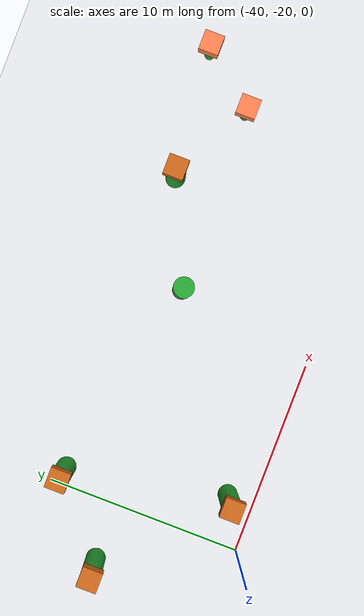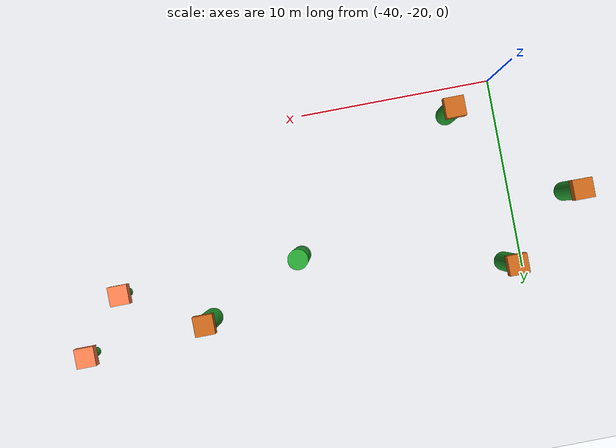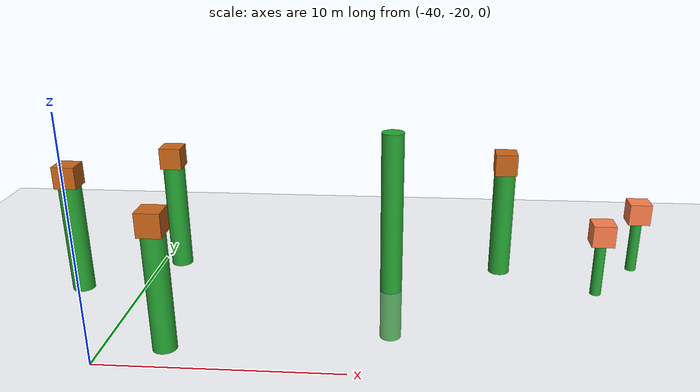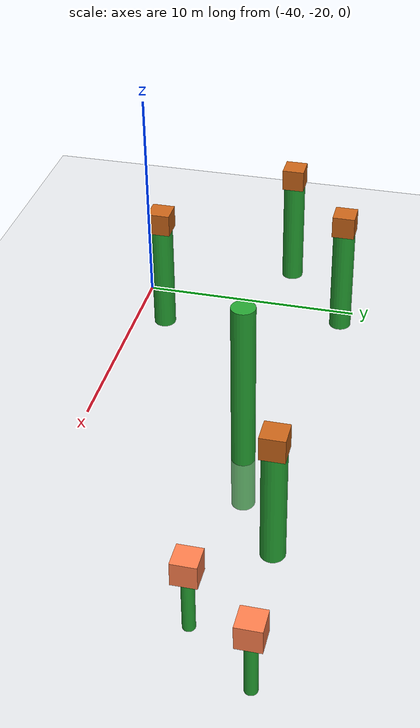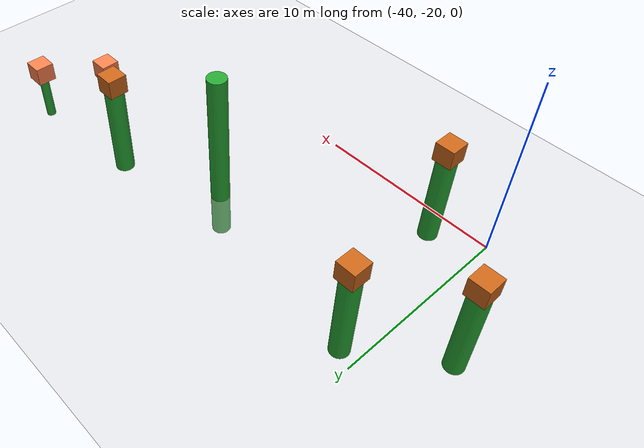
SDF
<sdf version="1.7">
 <world name="default">
  <model name="ground_plane">
   <static>1</static>
   <link name="link">
    <collision name="collision">
     <geometry><plane><normal>0 0 1</normal><size>100 100</size></plane></geometry>
     <surface>
      <contact><collide_bitmask>65535</collide_bitmask></contact>
      <friction><ode><mu>100</mu><mu2>50</mu2></ode></friction>
     </surface>
    </collision>
    <visual name="visual">
     <cast_shadows>0</cast_shadows>
     <geometry><plane><normal>0 0 1</normal><size>100 100</size></plane></geometry>
     <material>
      <script><uri>file://media/materials/scripts/gazebo.material</uri><name>Gazebo/Grey</name></script>
     </material>
    </visual>
   </link>
  </model>
  <model name="unit_cylinder_green_2_clone_clone_13">
   <link name="link">
    <inertial>
     <mass>1</mass>
     <inertia><ixx>0.145833</ixx><ixy>0</ixy><ixz>0</ixz><iyy>0.145833</iyy><iyz>0</iyz><izz>0.125</izz></inertia>
    </inertial>
    <visual name="visual">
     <geometry><cylinder><radius>0.5</radius><length>10</length></cylinder></geometry>
     <material>
      <script><name>Gazebo/Green</name><uri>file://media/materials/scripts/gazebo.material</uri></script>
      <shader type="pixel"><normal_map>__default__</normal_map></shader>
      <ambient>0 1 0.3 1</ambient>
      <diffuse>0.7 0.7 0.7 1</diffuse>
      <specular>0.01 0.01 0.01 1</specular>
      <emissive>0 0 0 1</emissive>
     </material>
    </visual>
    <collision name="collision">
     <geometry><cylinder><radius>0.5</radius><length>5</length></cylinder></geometry>
     <surface>
      <friction>
       <ode><mu>1</mu><mu2>1</mu2><fdir1>0 0 0</fdir1><slip1>0</slip1><slip2>0</slip2></ode>
       <torsional>
        <coefficient>1</coefficient>
        <patch_radius>0</patch_radius>
        <surface_radius>0</surface_radius>
        <use_patch_radius>1</use_patch_radius>
        <ode><slip>0</slip></ode>
       </torsional>
      </friction>
      <bounce><restitution_coefficient>0</restitution_coefficient><threshold>1e+06</threshold></bounce>
      <contact>
       <collide_without_contact>0</collide_without_contact>
       <collide_without_contact_bitmask>1</collide_without_contact_bitmask>
       <collide_bitmask>1</collide_bitmask>
       <ode>
        <soft_cfm>0</soft_cfm>
        <soft_erp>0.2</soft_erp>
        <kp>1e+13</kp>
        <kd>1</kd>
        <max_vel>0.01</max_vel>
        <min_depth>0</min_depth>
       </ode>
       <bullet>
        <split_impulse>1</split_impulse>
        <split_impulse_penetration_threshold>-0.01</split_impulse_penetration_threshold>
        <soft_cfm>0</soft_cfm>
        <soft_erp>0.2</soft_erp>
        <kp>1e+13</kp>
        <kd>1</kd>
       </bullet>
      </contact>
     </surface>
    </collision>
   </link>
   <static>1</static>
   <pose>-28.5894 -12.7369 2.5 0 0 -0.000967</pose>
  </model>
  <model name="unit_cylinder_green_2_clone_clone_3_clone_0_clone_0_clone_22">
   <link name="link">
    <inertial>
     <mass>1</mass>
     <inertia><ixx>0.145833</ixx><ixy>0</ixy><ixz>0</ixz><iyy>0.145833</iyy><iyz>0</iyz><izz>0.125</izz></inertia>
    </inertial>
    <visual name="visual">
     <geometry><cylinder><radius>0.5</radius><length>5</length></cylinder></geometry>
     <material>
      <script><name>Gazebo/Green</name><uri>file://media/materials/scripts/gazebo.material</uri></script>
      <shader type="pixel"><normal_map>__default__</normal_map></shader>
      <ambient>0 1 0.3 1</ambient>
      <diffuse>0.7 0.7 0.7 1</diffuse>
      <specular>0.01 0.01 0.01 1</specular>
      <emissive>0 0 0 1</emissive>
     </material>
    </visual>
    <collision name="collision">
     <geometry><cylinder><radius>0.5</radius><length>5</length></cylinder></geometry>
     <surface>
      <friction>
       <ode><mu>1</mu><mu2>1</mu2><fdir1>0 0 0</fdir1><slip1>0</slip1><slip2>0</slip2></ode>
       <torsional>
        <coefficient>1</coefficient>
        <patch_radius>0</patch_radius>
        <surface_radius>0</surface_radius>
        <use_patch_radius>1</use_patch_radius>
        <ode><slip>0</slip></ode>
       </torsional>
      </friction>
      <bounce><restitution_coefficient>0</restitution_coefficient><threshold>1e+06</threshold></bounce>
      <contact>
       <collide_without_contact>0</collide_without_contact>
       <collide_without_contact_bitmask>1</collide_without_contact_bitmask>
       <collide_bitmask>1</collide_bitmask>
       <ode>
        <soft_cfm>0</soft_cfm>
        <soft_erp>0.2</soft_erp>
        <kp>1e+13</kp>
        <kd>1</kd>
        <max_vel>0.01</max_vel>
        <min_depth>0</min_depth>
       </ode>
       <bullet>
        <split_impulse>1</split_impulse>
        <split_impulse_penetration_threshold>-0.01</split_impulse_penetration_threshold>
        <soft_cfm>0</soft_cfm>
        <soft_erp>0.2</soft_erp>
        <kp>1e+13</kp>
        <kd>1</kd>
       </bullet>
      </contact>
     </surface>
    </collision>
   </link>
   <link name="link_3">
    <inertial>
     <mass>1</mass>
     <inertia>
      <ixx>0.166667</ixx>
      <ixy>0</ixy>
      <ixz>0</ixz>
      <iyy>0.166667</iyy>
      <iyz>0</iyz>
      <izz>0.166667</izz>
     </inertia>
    </inertial>
    <pose>0 0 3 0 -0 0.000935</pose>
    <visual name="visual">
     <geometry><box><size>1 1 1</size></box></geometry>
     <material>
      <lighting>1</lighting>
      <script><uri>file://media/materials/scripts/gazebo.material</uri><name>Gazebo/Grey</name></script>
      <shader type="pixel"><normal_map>__default__</normal_map></shader>
      <ambient>0.8 0.4 0.1 1</ambient>
      <diffuse>0.7 0.7 0.7 1</diffuse>
      <specular>0.01 0.01 0.01 1</specular>
      <emissive>0 0 0 1</emissive>
     </material>
    </visual>
    <collision name="collision">
     <geometry><box><size>1 1 1</size></box></geometry>
     <surface>
      <friction>
       <ode><mu>1</mu><mu2>1</mu2><fdir1>0 0 0</fdir1><slip1>0</slip1><slip2>0</slip2></ode>
       <torsional>
        <coefficient>1</coefficient>
        <patch_radius>0</patch_radius>
        <surface_radius>0</surface_radius>
        <use_patch_radius>1</use_patch_radius>
        <ode><slip>0</slip></ode>
       </torsional>
      </friction>
      <bounce><restitution_coefficient>0</restitution_coefficient><threshold>1e+06</threshold></bounce>
      <contact>
       <collide_without_contact>0</collide_without_contact>
       <collide_without_contact_bitmask>1</collide_without_contact_bitmask>
       <collide_bitmask>1</collide_bitmask>
       <ode>
        <soft_cfm>0</soft_cfm>
        <soft_erp>0.2</soft_erp>
        <kp>1e+13</kp>
        <kd>1</kd>
        <max_vel>0.01</max_vel>
        <min_depth>0</min_depth>
       </ode>
       <bullet>
        <split_impulse>1</split_impulse>
        <split_impulse_penetration_threshold>-0.01</split_impulse_penetration_threshold>
        <soft_cfm>0</soft_cfm>
        <soft_erp>0.2</soft_erp>
        <kp>1e+13</kp>
        <kd>1</kd>
       </bullet>
      </contact>
     </surface>
    </collision>
   </link>
   <static>1</static>
   <pose>-23.4369 -10.3965 2.49999 0 0 -0.000935</pose>
  </model>
  <model name="unit_cylinder_green_2_clone_clone_3_clone_0_clone_0_clone_23">
   <link name="link">
    <inertial>
     <mass>1</mass>
     <inertia><ixx>0.145833</ixx><ixy>0</ixy><ixz>0</ixz><iyy>0.145833</iyy><iyz>0</iyz><izz>0.125</izz></inertia>
    </inertial>
    <visual name="visual">
     <geometry><cylinder><radius>0.5</radius><length>5</length></cylinder></geometry>
     <material>
      <script><name>Gazebo/Green</name><uri>file://media/materials/scripts/gazebo.material</uri></script>
      <shader type="pixel"><normal_map>__default__</normal_map></shader>
      <ambient>0 1 0.3 1</ambient>
      <diffuse>0.7 0.7 0.7 1</diffuse>
      <specular>0.01 0.01 0.01 1</specular>
      <emissive>0 0 0 1</emissive>
     </material>
    </visual>
    <collision name="collision">
     <geometry><cylinder><radius>0.5</radius><length>5</length></cylinder></geometry>
     <surface>
      <friction>
       <ode><mu>1</mu><mu2>1</mu2><fdir1>0 0 0</fdir1><slip1>0</slip1><slip2>0</slip2></ode>
       <torsional>
        <coefficient>1</coefficient>
        <patch_radius>0</patch_radius>
        <surface_radius>0</surface_radius>
        <use_patch_radius>1</use_patch_radius>
        <ode><slip>0</slip></ode>
       </torsional>
      </friction>
      <bounce><restitution_coefficient>0</restitution_coefficient><threshold>1e+06</threshold></bounce>
      <contact>
       <collide_without_contact>0</collide_without_contact>
       <collide_without_contact_bitmask>1</collide_without_contact_bitmask>
       <collide_bitmask>1</collide_bitmask>
       <ode>
        <soft_cfm>0</soft_cfm>
        <soft_erp>0.2</soft_erp>
        <kp>1e+13</kp>
        <kd>1</kd>
        <max_vel>0.01</max_vel>
        <min_depth>0</min_depth>
       </ode>
       <bullet>
        <split_impulse>1</split_impulse>
        <split_impulse_penetration_threshold>-0.01</split_impulse_penetration_threshold>
        <soft_cfm>0</soft_cfm>
        <soft_erp>0.2</soft_erp>
        <kp>1e+13</kp>
        <kd>1</kd>
       </bullet>
      </contact>
     </surface>
    </collision>
   </link>
   <link name="link_3">
    <inertial>
     <mass>1</mass>
     <inertia>
      <ixx>0.166667</ixx>
      <ixy>0</ixy>
      <ixz>0</ixz>
      <iyy>0.166667</iyy>
      <iyz>0</iyz>
      <izz>0.166667</izz>
     </inertia>
    </inertial>
    <pose>0 0 3 0 -0 0.000935</pose>
    <visual name="visual">
     <geometry><box><size>1 1 1</size></box></geometry>
     <material>
      <lighting>1</lighting>
      <script><uri>file://media/materials/scripts/gazebo.material</uri><name>Gazebo/Grey</name></script>
      <shader type="pixel"><normal_map>__default__</normal_map></shader>
      <ambient>0.8 0.4 0.1 1</ambient>
      <diffuse>0.7 0.7 0.7 1</diffuse>
      <specular>0.01 0.01 0.01 1</specular>
      <emissive>0 0 0 1</emissive>
     </material>
    </visual>
    <collision name="collision">
     <geometry><box><size>1 1 1</size></box></geometry>
     <surface>
      <friction>
       <ode><mu>1</mu><mu2>1</mu2><fdir1>0 0 0</fdir1><slip1>0</slip1><slip2>0</slip2></ode>
       <torsional>
        <coefficient>1</coefficient>
        <patch_radius>0</patch_radius>
        <surface_radius>0</surface_radius>
        <use_patch_radius>1</use_patch_radius>
        <ode><slip>0</slip></ode>
       </torsional>
      </friction>
      <bounce><restitution_coefficient>0</restitution_coefficient><threshold>1e+06</threshold></bounce>
      <contact>
       <collide_without_contact>0</collide_without_contact>
       <collide_without_contact_bitmask>1</collide_without_contact_bitmask>
       <collide_bitmask>1</collide_bitmask>
       <ode>
        <soft_cfm>0</soft_cfm>
        <soft_erp>0.2</soft_erp>
        <kp>1e+13</kp>
        <kd>1</kd>
        <max_vel>0.01</max_vel>
        <min_depth>0</min_depth>
       </ode>
       <bullet>
        <split_impulse>1</split_impulse>
        <split_impulse_penetration_threshold>-0.01</split_impulse_penetration_threshold>
        <soft_cfm>0</soft_cfm>
        <soft_erp>0.2</soft_erp>
        <kp>1e+13</kp>
        <kd>1</kd>
       </bullet>
      </contact>
     </surface>
    </collision>
   </link>
   <static>1</static>
   <pose>-37.4722 -18.6001 2.49999 0 0 -0.000935</pose>
  </model>
  <model name="unit_cylinder_green_2_clone_clone_3_clone_0_clone_0_clone_24">
   <link name="link">
    <inertial>
     <mass>1</mass>
     <inertia><ixx>0.145833</ixx><ixy>0</ixy><ixz>0</ixz><iyy>0.145833</iyy><iyz>0</iyz><izz>0.125</izz></inertia>
    </inertial>
    <visual name="visual">
     <geometry><cylinder><radius>0.5</radius><length>5</length></cylinder></geometry>
     <material>
      <script><name>Gazebo/Green</name><uri>file://media/materials/scripts/gazebo.material</uri></script>
      <shader type="pixel"><normal_map>__default__</normal_map></shader>
      <ambient>0 1 0.3 1</ambient>
      <diffuse>0.7 0.7 0.7 1</diffuse>
      <specular>0.01 0.01 0.01 1</specular>
      <emissive>0 0 0 1</emissive>
     </material>
    </visual>
    <collision name="collision">
     <geometry><cylinder><radius>0.5</radius><length>5</length></cylinder></geometry>
     <surface>
      <friction>
       <ode><mu>1</mu><mu2>1</mu2><fdir1>0 0 0</fdir1><slip1>0</slip1><slip2>0</slip2></ode>
       <torsional>
        <coefficient>1</coefficient>
        <patch_radius>0</patch_radius>
        <surface_radius>0</surface_radius>
        <use_patch_radius>1</use_patch_radius>
        <ode><slip>0</slip></ode>
       </torsional>
      </friction>
      <bounce><restitution_coefficient>0</restitution_coefficient><threshold>1e+06</threshold></bounce>
      <contact>
       <collide_without_contact>0</collide_without_contact>
       <collide_without_contact_bitmask>1</collide_without_contact_bitmask>
       <collide_bitmask>1</collide_bitmask>
       <ode>
        <soft_cfm>0</soft_cfm>
        <soft_erp>0.2</soft_erp>
        <kp>1e+13</kp>
        <kd>1</kd>
        <max_vel>0.01</max_vel>
        <min_depth>0</min_depth>
       </ode>
       <bullet>
        <split_impulse>1</split_impulse>
        <split_impulse_penetration_threshold>-0.01</split_impulse_penetration_threshold>
        <soft_cfm>0</soft_cfm>
        <soft_erp>0.2</soft_erp>
        <kp>1e+13</kp>
        <kd>1</kd>
       </bullet>
      </contact>
     </surface>
    </collision>
   </link>
   <link name="link_3">
    <inertial>
     <mass>1</mass>
     <inertia>
      <ixx>0.166667</ixx>
      <ixy>0</ixy>
      <ixz>0</ixz>
      <iyy>0.166667</iyy>
      <iyz>0</iyz>
      <izz>0.166667</izz>
     </inertia>
    </inertial>
    <pose>0 0 3 0 -0 0.000935</pose>
    <visual name="visual">
     <geometry><box><size>1 1 1</size></box></geometry>
     <material>
      <lighting>1</lighting>
      <script><uri>file://media/materials/scripts/gazebo.material</uri><name>Gazebo/Grey</name></script>
      <shader type="pixel"><normal_map>__default__</normal_map></shader>
      <ambient>0.8 0.4 0.1 1</ambient>
      <diffuse>0.7 0.7 0.7 1</diffuse>
      <specular>0.01 0.01 0.01 1</specular>
      <emissive>0 0 0 1</emissive>
     </material>
    </visual>
    <collision name="collision">
     <geometry><box><size>1 1 1</size></box></geometry>
     <surface>
      <friction>
       <ode><mu>1</mu><mu2>1</mu2><fdir1>0 0 0</fdir1><slip1>0</slip1><slip2>0</slip2></ode>
       <torsional>
        <coefficient>1</coefficient>
        <patch_radius>0</patch_radius>
        <surface_radius>0</surface_radius>
        <use_patch_radius>1</use_patch_radius>
        <ode><slip>0</slip></ode>
       </torsional>
      </friction>
      <bounce><restitution_coefficient>0</restitution_coefficient><threshold>1e+06</threshold></bounce>
      <contact>
       <collide_without_contact>0</collide_without_contact>
       <collide_without_contact_bitmask>1</collide_without_contact_bitmask>
       <collide_bitmask>1</collide_bitmask>
       <ode>
        <soft_cfm>0</soft_cfm>
        <soft_erp>0.2</soft_erp>
        <kp>1e+13</kp>
        <kd>1</kd>
        <max_vel>0.01</max_vel>
        <min_depth>0</min_depth>
       </ode>
       <bullet>
        <split_impulse>1</split_impulse>
        <split_impulse_penetration_threshold>-0.01</split_impulse_penetration_threshold>
        <soft_cfm>0</soft_cfm>
        <soft_erp>0.2</soft_erp>
        <kp>1e+13</kp>
        <kd>1</kd>
       </bullet>
      </contact>
     </surface>
    </collision>
   </link>
   <static>1</static>
   <pose>-39.0761 -10.4629 2.49999 0 0 -0.000935</pose>
  </model>
  <model name="unit_cylinder_green_2_clone_clone_3_clone_0_clone_0_clone_25">
   <link name="link">
    <inertial>
     <mass>1</mass>
     <inertia><ixx>0.145833</ixx><ixy>0</ixy><ixz>0</ixz><iyy>0.145833</iyy><iyz>0</iyz><izz>0.125</izz></inertia>
    </inertial>
    <visual name="visual">
     <geometry><cylinder><radius>0.5</radius><length>5</length></cylinder></geometry>
     <material>
      <script><name>Gazebo/Green</name><uri>file://media/materials/scripts/gazebo.material</uri></script>
      <shader type="pixel"><normal_map>__default__</normal_map></shader>
      <ambient>0 1 0.3 1</ambient>
      <diffuse>0.7 0.7 0.7 1</diffuse>
      <specular>0.01 0.01 0.01 1</specular>
      <emissive>0 0 0 1</emissive>
     </material>
    </visual>
    <collision name="collision">
     <geometry><cylinder><radius>0.5</radius><length>5</length></cylinder></geometry>
     <surface>
      <friction>
       <ode><mu>1</mu><mu2>1</mu2><fdir1>0 0 0</fdir1><slip1>0</slip1><slip2>0</slip2></ode>
       <torsional>
        <coefficient>1</coefficient>
        <patch_radius>0</patch_radius>
        <surface_radius>0</surface_radius>
        <use_patch_radius>1</use_patch_radius>
        <ode><slip>0</slip></ode>
       </torsional>
      </friction>
      <bounce><restitution_coefficient>0</restitution_coefficient><threshold>1e+06</threshold></bounce>
      <contact>
       <collide_without_contact>0</collide_without_contact>
       <collide_without_contact_bitmask>1</collide_without_contact_bitmask>
       <collide_bitmask>1</collide_bitmask>
       <ode>
        <soft_cfm>0</soft_cfm>
        <soft_erp>0.2</soft_erp>
        <kp>1e+13</kp>
        <kd>1</kd>
        <max_vel>0.01</max_vel>
        <min_depth>0</min_depth>
       </ode>
       <bullet>
        <split_impulse>1</split_impulse>
        <split_impulse_penetration_threshold>-0.01</split_impulse_penetration_threshold>
        <soft_cfm>0</soft_cfm>
        <soft_erp>0.2</soft_erp>
        <kp>1e+13</kp>
        <kd>1</kd>
       </bullet>
      </contact>
     </surface>
    </collision>
   </link>
   <link name="link_3">
    <inertial>
     <mass>1</mass>
     <inertia>
      <ixx>0.166667</ixx>
      <ixy>0</ixy>
      <ixz>0</ixz>
      <iyy>0.166667</iyy>
      <iyz>0</iyz>
      <izz>0.166667</izz>
     </inertia>
    </inertial>
    <pose>0 0 3 0 -0 0.000935</pose>
    <visual name="visual">
     <geometry><box><size>1 1 1</size></box></geometry>
     <material>
      <lighting>1</lighting>
      <script><uri>file://media/materials/scripts/gazebo.material</uri><name>Gazebo/Grey</name></script>
      <shader type="pixel"><normal_map>__default__</normal_map></shader>
      <ambient>0.8 0.4 0.1 1</ambient>
      <diffuse>0.7 0.7 0.7 1</diffuse>
      <specular>0.01 0.01 0.01 1</specular>
      <emissive>0 0 0 1</emissive>
     </material>
    </visual>
    <collision name="collision">
     <geometry><box><size>1 1 1</size></box></geometry>
     <surface>
      <friction>
       <ode><mu>1</mu><mu2>1</mu2><fdir1>0 0 0</fdir1><slip1>0</slip1><slip2>0</slip2></ode>
       <torsional>
        <coefficient>1</coefficient>
        <patch_radius>0</patch_radius>
        <surface_radius>0</surface_radius>
        <use_patch_radius>1</use_patch_radius>
        <ode><slip>0</slip></ode>
       </torsional>
      </friction>
      <bounce><restitution_coefficient>0</restitution_coefficient><threshold>1e+06</threshold></bounce>
      <contact>
       <collide_without_contact>0</collide_without_contact>
       <collide_without_contact_bitmask>1</collide_without_contact_bitmask>
       <collide_bitmask>1</collide_bitmask>
       <ode>
        <soft_cfm>0</soft_cfm>
        <soft_erp>0.2</soft_erp>
        <kp>1e+13</kp>
        <kd>1</kd>
        <max_vel>0.01</max_vel>
        <min_depth>0</min_depth>
       </ode>
       <bullet>
        <split_impulse>1</split_impulse>
        <split_impulse_penetration_threshold>-0.01</split_impulse_penetration_threshold>
        <soft_cfm>0</soft_cfm>
        <soft_erp>0.2</soft_erp>
        <kp>1e+13</kp>
        <kd>1</kd>
       </bullet>
      </contact>
     </surface>
    </collision>
   </link>
   <static>1</static>
   <pose>-42.8802 -13.5074 2.49999 0 0 -0.000935</pose>
  </model>
  <model name="unit_cylinder_green_2_clone_clone_3_clone_0_clone_0_clone_51">
   <link name="link">
    <inertial>
     <mass>1</mass>
     <inertia><ixx>0.145833</ixx><ixy>0</ixy><ixz>0</ixz><iyy>0.145833</iyy><iyz>0</iyz><izz>0.125</izz></inertia>
    </inertial>
    <pose>0 0 -1.25 0 -0 0</pose>
    <visual name="visual">
     <geometry><cylinder><radius>0.25</radius><length>2.5</length></cylinder></geometry>
     <material>
      <script><name>Gazebo/Green</name><uri>file://media/materials/scripts/gazebo.material</uri></script>
      <shader type="pixel"><normal_map>__default__</normal_map></shader>
      <ambient>0 1 0.3 1</ambient>
      <diffuse>0.7 0.7 0.7 1</diffuse>
      <specular>0.01 0.01 0.01 1</specular>
      <emissive>0 0 0 1</emissive>
     </material>
    </visual>
    <collision name="collision">
     <geometry><cylinder><radius>0.5</radius><length>5</length></cylinder></geometry>
     <surface>
      <friction>
       <ode><mu>1</mu><mu2>1</mu2><fdir1>0 0 0</fdir1><slip1>0</slip1><slip2>0</slip2></ode>
       <torsional>
        <coefficient>1</coefficient>
        <patch_radius>0</patch_radius>
        <surface_radius>0</surface_radius>
        <use_patch_radius>1</use_patch_radius>
        <ode><slip>0</slip></ode>
       </torsional>
      </friction>
      <bounce><restitution_coefficient>0</restitution_coefficient><threshold>1e+06</threshold></bounce>
      <contact>
       <collide_without_contact>0</collide_without_contact>
       <collide_without_contact_bitmask>1</collide_without_contact_bitmask>
       <collide_bitmask>1</collide_bitmask>
       <ode>
        <soft_cfm>0</soft_cfm>
        <soft_erp>0.2</soft_erp>
        <kp>1e+13</kp>
        <kd>1</kd>
        <max_vel>0.01</max_vel>
        <min_depth>0</min_depth>
       </ode>
       <bullet>
        <split_impulse>1</split_impulse>
        <split_impulse_penetration_threshold>-0.01</split_impulse_penetration_threshold>
        <soft_cfm>0</soft_cfm>
        <soft_erp>0.2</soft_erp>
        <kp>1e+13</kp>
        <kd>1</kd>
       </bullet>
      </contact>
     </surface>
    </collision>
   </link>
   <link name="link_3">
    <inertial>
     <mass>1</mass>
     <inertia>
      <ixx>0.166667</ixx>
      <ixy>0</ixy>
      <ixz>0</ixz>
      <iyy>0.166667</iyy>
      <iyz>0</iyz>
      <izz>0.166667</izz>
     </inertia>
    </inertial>
    <pose>0 0 0.5 0 -0 0.000935</pose>
    <visual name="visual">
     <geometry><box><size>1 1 1</size></box></geometry>
     <material>
      <lighting>1</lighting>
      <script><uri>file://media/materials/scripts/gazebo.material</uri><name>Gazebo/Grey</name></script>
      <shader type="pixel"><normal_map>__default__</normal_map></shader>
      <ambient>1 0.5 0.3 1</ambient>
      <diffuse>0.7 0.7 0.7 1</diffuse>
      <specular>0.01 0.01 0.01 1</specular>
      <emissive>0 0 0 1</emissive>
     </material>
    </visual>
    <collision name="collision">
     <geometry><box><size>1 1 1</size></box></geometry>
     <surface>
      <friction>
       <ode><mu>1</mu><mu2>1</mu2><fdir1>0 0 0</fdir1><slip1>0</slip1><slip2>0</slip2></ode>
       <torsional>
        <coefficient>1</coefficient>
        <patch_radius>0</patch_radius>
        <surface_radius>0</surface_radius>
        <use_patch_radius>1</use_patch_radius>
        <ode><slip>0</slip></ode>
       </torsional>
      </friction>
      <bounce><restitution_coefficient>0</restitution_coefficient><threshold>1e+06</threshold></bounce>
      <contact>
       <collide_without_contact>0</collide_without_contact>
       <collide_without_contact_bitmask>1</collide_without_contact_bitmask>
       <collide_bitmask>1</collide_bitmask>
       <ode>
        <soft_cfm>0</soft_cfm>
        <soft_erp>0.2</soft_erp>
        <kp>1e+13</kp>
        <kd>1</kd>
        <max_vel>0.01</max_vel>
        <min_depth>0</min_depth>
       </ode>
       <bullet>
        <split_impulse>1</split_impulse>
        <split_impulse_penetration_threshold>-0.01</split_impulse_penetration_threshold>
        <soft_cfm>0</soft_cfm>
        <soft_erp>0.2</soft_erp>
        <kp>1e+13</kp>
        <kd>1</kd>
       </bullet>
      </contact>
     </surface>
    </collision>
   </link>
   <static>1</static>
   <pose>-16.9759 -9.77709 2.49999 0 0 -0.000935</pose>
  </model>
  <model name="unit_cylinder_green_2_clone_clone_3_clone_0_clone_0_clone_53">
   <link name="link">
    <inertial>
     <mass>1</mass>
     <inertia><ixx>0.145833</ixx><ixy>0</ixy><ixz>0</ixz><iyy>0.145833</iyy><iyz>0</iyz><izz>0.125</izz></inertia>
    </inertial>
    <pose>0 0 -1.25 0 -0 0</pose>
    <visual name="visual">
     <geometry><cylinder><radius>0.25</radius><length>2.5</length></cylinder></geometry>
     <material>
      <script><name>Gazebo/Green</name><uri>file://media/materials/scripts/gazebo.material</uri></script>
      <shader type="pixel"><normal_map>__default__</normal_map></shader>
      <ambient>0 1 0.3 1</ambient>
      <diffuse>0.7 0.7 0.7 1</diffuse>
      <specular>0.01 0.01 0.01 1</specular>
      <emissive>0 0 0 1</emissive>
     </material>
    </visual>
    <collision name="collision">
     <geometry><cylinder><radius>0.5</radius><length>5</length></cylinder></geometry>
     <surface>
      <friction>
       <ode><mu>1</mu><mu2>1</mu2><fdir1>0 0 0</fdir1><slip1>0</slip1><slip2>0</slip2></ode>
       <torsional>
        <coefficient>1</coefficient>
        <patch_radius>0</patch_radius>
        <surface_radius>0</surface_radius>
        <use_patch_radius>1</use_patch_radius>
        <ode><slip>0</slip></ode>
       </torsional>
      </friction>
      <bounce><restitution_coefficient>0</restitution_coefficient><threshold>1e+06</threshold></bounce>
      <contact>
       <collide_without_contact>0</collide_without_contact>
       <collide_without_contact_bitmask>1</collide_without_contact_bitmask>
       <collide_bitmask>1</collide_bitmask>
       <ode>
        <soft_cfm>0</soft_cfm>
        <soft_erp>0.2</soft_erp>
        <kp>1e+13</kp>
        <kd>1</kd>
        <max_vel>0.01</max_vel>
        <min_depth>0</min_depth>
       </ode>
       <bullet>
        <split_impulse>1</split_impulse>
        <split_impulse_penetration_threshold>-0.01</split_impulse_penetration_threshold>
        <soft_cfm>0</soft_cfm>
        <soft_erp>0.2</soft_erp>
        <kp>1e+13</kp>
        <kd>1</kd>
       </bullet>
      </contact>
     </surface>
    </collision>
   </link>
   <link name="link_3">
    <inertial>
     <mass>1</mass>
     <inertia>
      <ixx>0.166667</ixx>
      <ixy>0</ixy>
      <ixz>0</ixz>
      <iyy>0.166667</iyy>
      <iyz>0</iyz>
      <izz>0.166667</izz>
     </inertia>
    </inertial>
    <pose>0 0 0.5 0 -0 0.000935</pose>
    <visual name="visual">
     <geometry><box><size>1 1 1</size></box></geometry>
     <material>
      <lighting>1</lighting>
      <script><uri>file://media/materials/scripts/gazebo.material</uri><name>Gazebo/Grey</name></script>
      <shader type="pixel"><normal_map>__default__</normal_map></shader>
      <ambient>1 0.5 0.3 1</ambient>
      <diffuse>0.7 0.7 0.7 1</diffuse>
      <specular>0.01 0.01 0.01 1</specular>
      <emissive>0 0 0 1</emissive>
     </material>
    </visual>
    <collision name="collision">
     <geometry><box><size>1 1 1</size></box></geometry>
     <surface>
      <friction>
       <ode><mu>1</mu><mu2>1</mu2><fdir1>0 0 0</fdir1><slip1>0</slip1><slip2>0</slip2></ode>
       <torsional>
        <coefficient>1</coefficient>
        <patch_radius>0</patch_radius>
        <surface_radius>0</surface_radius>
        <use_patch_radius>1</use_patch_radius>
        <ode><slip>0</slip></ode>
       </torsional>
      </friction>
      <bounce><restitution_coefficient>0</restitution_coefficient><threshold>1e+06</threshold></bounce>
      <contact>
       <collide_without_contact>0</collide_without_contact>
       <collide_without_contact_bitmask>1</collide_without_contact_bitmask>
       <collide_bitmask>1</collide_bitmask>
       <ode>
        <soft_cfm>0</soft_cfm>
        <soft_erp>0.2</soft_erp>
        <kp>1e+13</kp>
        <kd>1</kd>
        <max_vel>0.01</max_vel>
        <min_depth>0</min_depth>
       </ode>
       <bullet>
        <split_impulse>1</split_impulse>
        <split_impulse_penetration_threshold>-0.01</split_impulse_penetration_threshold>
        <soft_cfm>0</soft_cfm>
        <soft_erp>0.2</soft_erp>
        <kp>1e+13</kp>
        <kd>1</kd>
       </bullet>
      </contact>
     </surface>
    </collision>
   </link>
   <static>1</static>
   <pose>-19.2195 -12.5513 2.49999 0 0 -0.000935</pose>
  </model>
 </world>
</sdf>
